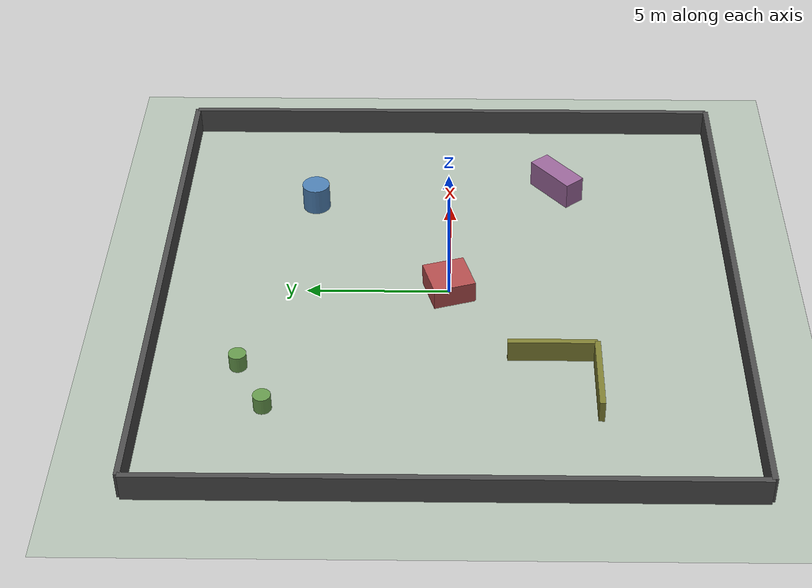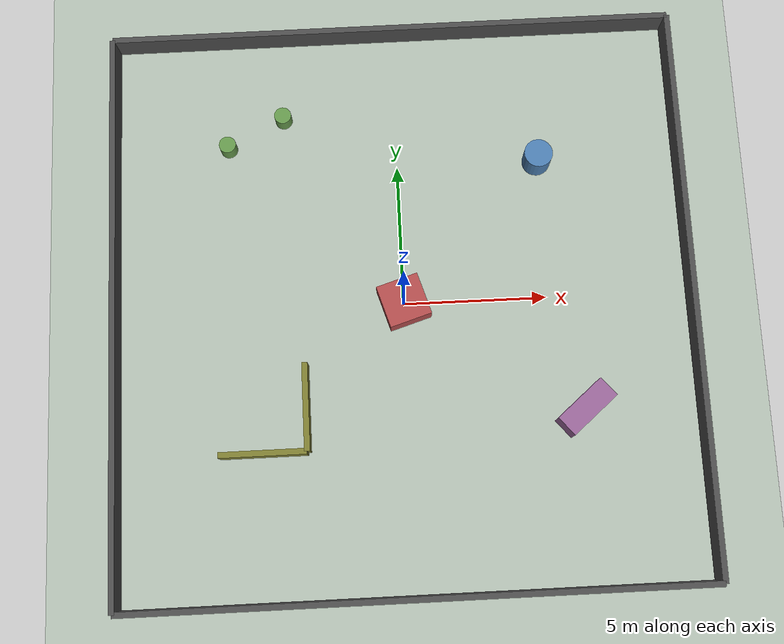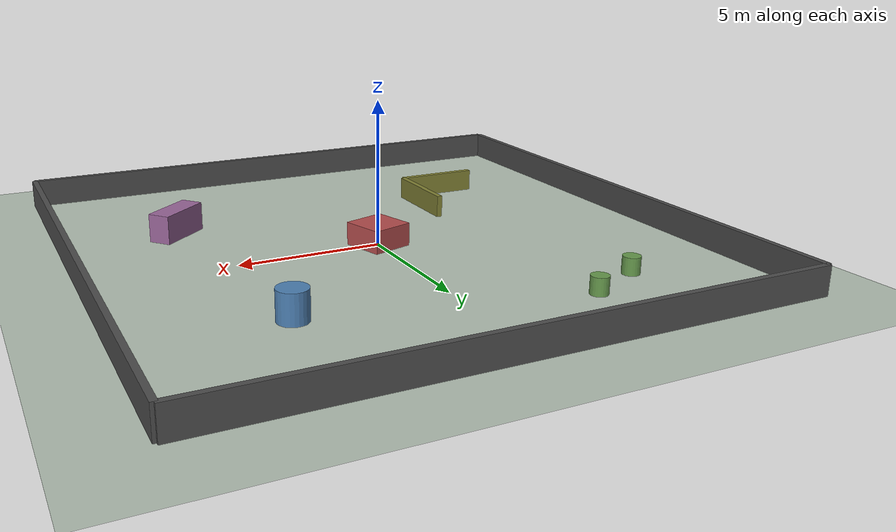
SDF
<?xml version="1.0" ?>
<sdf version="1.9">
  <world name="obstacle_field">

    <!-- Physics -->
    <physics name="1ms" type="ignored">
      <max_step_size>0.001</max_step_size>
      <real_time_factor>1.0</real_time_factor>
    </physics>

    <!-- Plugins -->
    <plugin filename="gz-sim-physics-system" name="gz::sim::systems::Physics"/>
    <plugin filename="gz-sim-scene-broadcaster-system" name="gz::sim::systems::SceneBroadcaster"/>
    <plugin filename="gz-sim-user-commands-system" name="gz::sim::systems::UserCommands"/>
    <plugin filename="gz-sim-sensors-system" name="gz::sim::systems::Sensors">
      <render_engine>ogre2</render_engine>
    </plugin>
    <plugin filename="gz-sim-contact-system" name="gz::sim::systems::Contact"/>
    <plugin filename="gz-sim-imu-system" name="gz::sim::systems::Imu"/>

    <!-- Lighting -->
    <light type="directional" name="sun">
      <cast_shadows>true</cast_shadows>
      <pose>0 0 10 0 0 0</pose>
      <diffuse>0.8 0.8 0.8 1</diffuse>
      <specular>0.2 0.2 0.2 1</specular>
      <direction>-0.5 0.1 -0.9</direction>
    </light>

    <!-- Ground plane -->
    <model name="ground_plane">
      <static>true</static>
      <link name="link">
        <collision name="collision">
          <geometry>
            <plane><normal>0 0 1</normal><size>100 100</size></plane>
          </geometry>
        </collision>
        <visual name="visual">
          <geometry>
            <plane><normal>0 0 1</normal><size>100 100</size></plane>
          </geometry>
          <material>
            <ambient>0.7 0.75 0.7 1</ambient>
            <diffuse>0.7 0.75 0.7 1</diffuse>
          </material>
        </visual>
      </link>
    </model>

    <!-- Arena walls (20m x 20m) -->
    <model name="wall_north">
      <static>true</static>
      <pose>0 10 0.5 0 0 0</pose>
      <link name="link">
        <collision name="collision"><geometry><box><size>20 0.2 1.0</size></box></geometry></collision>
        <visual name="visual"><geometry><box><size>20 0.2 1.0</size></box></geometry>
          <material><ambient>0.3 0.3 0.3 1</ambient></material>
        </visual>
      </link>
    </model>
    <model name="wall_south">
      <static>true</static>
      <pose>0 -10 0.5 0 0 0</pose>
      <link name="link">
        <collision name="collision"><geometry><box><size>20 0.2 1.0</size></box></geometry></collision>
        <visual name="visual"><geometry><box><size>20 0.2 1.0</size></box></geometry>
          <material><ambient>0.3 0.3 0.3 1</ambient></material>
        </visual>
      </link>
    </model>
    <model name="wall_east">
      <static>true</static>
      <pose>10 0 0.5 0 0 0</pose>
      <link name="link">
        <collision name="collision"><geometry><box><size>0.2 20 1.0</size></box></geometry></collision>
        <visual name="visual"><geometry><box><size>0.2 20 1.0</size></box></geometry>
          <material><ambient>0.3 0.3 0.3 1</ambient></material>
        </visual>
      </link>
    </model>
    <model name="wall_west">
      <static>true</static>
      <pose>-10 0 0.5 0 0 0</pose>
      <link name="link">
        <collision name="collision"><geometry><box><size>0.2 20 1.0</size></box></geometry></collision>
        <visual name="visual"><geometry><box><size>0.2 20 1.0</size></box></geometry>
          <material><ambient>0.3 0.3 0.3 1</ambient></material>
        </visual>
      </link>
    </model>

    <!-- Obstacle: box cluster (center) -->
    <model name="box_center">
      <static>true</static>
      <pose>0 0 0.4 0 0 0.3</pose>
      <link name="link">
        <collision name="collision"><geometry><box><size>1.5 1.5 0.8</size></box></geometry></collision>
        <visual name="visual"><geometry><box><size>1.5 1.5 0.8</size></box></geometry>
          <material><ambient>0.6 0.2 0.2 1</ambient><diffuse>0.7 0.3 0.3 1</diffuse></material>
        </visual>
      </link>
    </model>

    <!-- Obstacle: cylinder (northeast) -->
    <model name="cylinder_ne">
      <static>true</static>
      <pose>5 5 0.5 0 0 0</pose>
      <link name="link">
        <collision name="collision"><geometry><cylinder><radius>0.5</radius><length>1.0</length></cylinder></geometry></collision>
        <visual name="visual"><geometry><cylinder><radius>0.5</radius><length>1.0</length></cylinder></geometry>
          <material><ambient>0.2 0.4 0.6 1</ambient><diffuse>0.3 0.5 0.7 1</diffuse></material>
        </visual>
      </link>
    </model>

    <!-- Obstacle: L-shaped wall (southwest) -->
    <model name="wall_sw_a">
      <static>true</static>
      <pose>-5 -5 0.4 0 0 0</pose>
      <link name="link">
        <collision name="collision"><geometry><box><size>3.0 0.2 0.8</size></box></geometry></collision>
        <visual name="visual"><geometry><box><size>3.0 0.2 0.8</size></box></geometry>
          <material><ambient>0.5 0.5 0.2 1</ambient></material>
        </visual>
      </link>
    </model>
    <model name="wall_sw_b">
      <static>true</static>
      <pose>-3.5 -3.5 0.4 0 0 0</pose>
      <link name="link">
        <collision name="collision"><geometry><box><size>0.2 3.0 0.8</size></box></geometry></collision>
        <visual name="visual"><geometry><box><size>0.2 3.0 0.8</size></box></geometry>
          <material><ambient>0.5 0.5 0.2 1</ambient></material>
        </visual>
      </link>
    </model>

    <!-- Obstacle: scattered cylinders (northwest) -->
    <model name="cyl_nw_1">
      <static>true</static>
      <pose>-6 6 0.3 0 0 0</pose>
      <link name="link">
        <collision name="collision"><geometry><cylinder><radius>0.3</radius><length>0.6</length></cylinder></geometry></collision>
        <visual name="visual"><geometry><cylinder><radius>0.3</radius><length>0.6</length></cylinder></geometry>
          <material><ambient>0.4 0.6 0.3 1</ambient></material>
        </visual>
      </link>
    </model>
    <model name="cyl_nw_2">
      <static>true</static>
      <pose>-4 7 0.3 0 0 0</pose>
      <link name="link">
        <collision name="collision"><geometry><cylinder><radius>0.3</radius><length>0.6</length></cylinder></geometry></collision>
        <visual name="visual"><geometry><cylinder><radius>0.3</radius><length>0.6</length></cylinder></geometry>
          <material><ambient>0.4 0.6 0.3 1</ambient></material>
        </visual>
      </link>
    </model>

    <!-- Obstacle: box (southeast) -->
    <model name="box_se">
      <static>true</static>
      <pose>6 -4 0.5 0 0 0.7</pose>
      <link name="link">
        <collision name="collision"><geometry><box><size>2.0 0.8 1.0</size></box></geometry></collision>
        <visual name="visual"><geometry><box><size>2.0 0.8 1.0</size></box></geometry>
          <material><ambient>0.5 0.3 0.5 1</ambient><diffuse>0.6 0.4 0.6 1</diffuse></material>
        </visual>
      </link>
    </model>

  </world>
</sdf>
